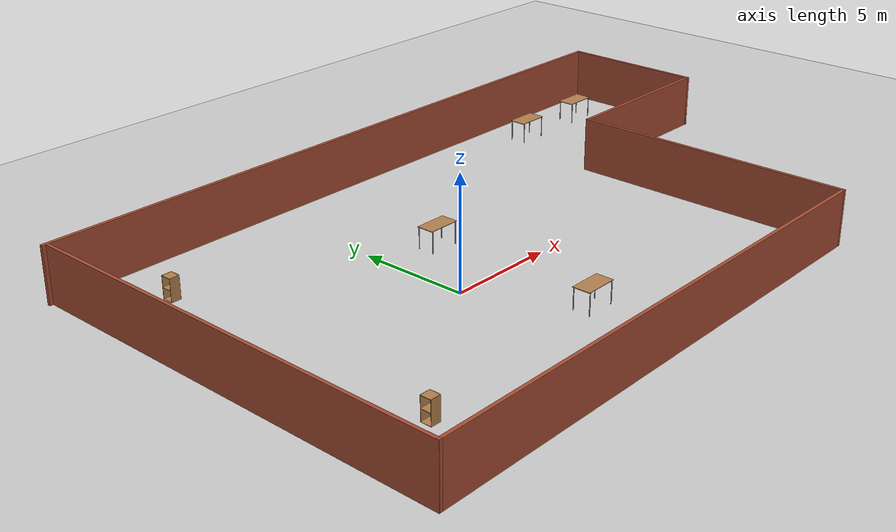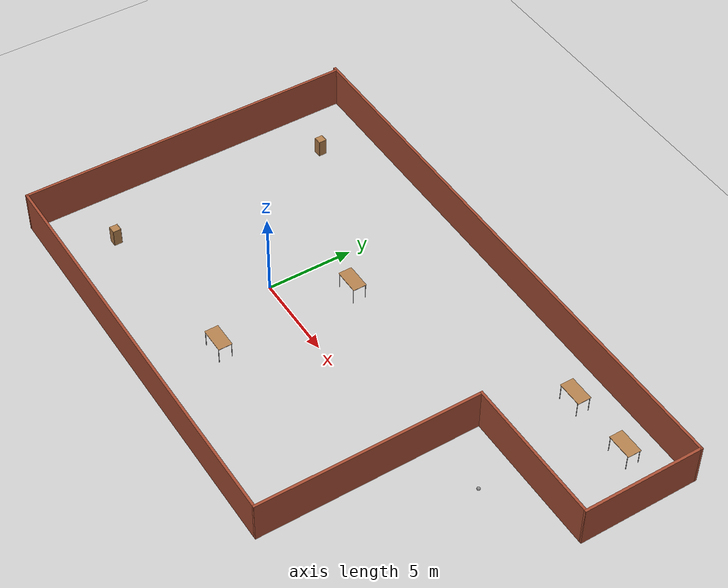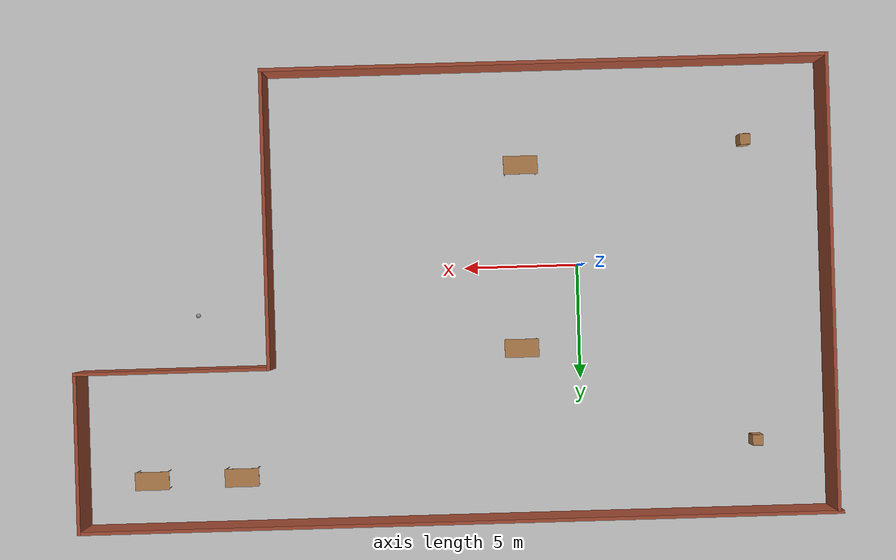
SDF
<sdf version="1.6">
 <world name="default">
  <light name="sun" type="directional">
   <pose>0 0 10 0 -0 0</pose>
   <diffuse>0.8 0.8 0.8 1</diffuse>
   <specular>0.2 0.2 0.2 1</specular>
   <attenuation>
    <range>1000</range>
    <constant>0.9</constant>
    <linear>0.01</linear>
    <quadratic>0.001</quadratic>
   </attenuation>
   <direction>-0.5 0.1 -0.9</direction>
  </light>
  <model name="ground_plane">
   <static>1</static>
   <link name="link">
    <collision name="collision">
     <geometry><plane><normal>0 0 1</normal><size>100 100</size></plane></geometry>
     <surface><friction><ode><mu>100</mu><mu2>50</mu2></ode></friction></surface>
    </collision>
    <visual name="visual">
     <cast_shadows>0</cast_shadows>
     <geometry><plane><normal>0 0 1</normal><size>100 100</size></plane></geometry>
     <material>
      <script><uri>file://media/materials/scripts/gazebo.material</uri><name>Gazebo/Grey</name></script>
     </material>
    </visual>
   </link>
  </model>
  <gravity>0 0 -9.8</gravity>
  <magnetic_field>6e-06 2.3e-05 -4.2e-05</magnetic_field>
  <atmosphere type="adiabatic"/>
  <physics name="default_physics" default="0" type="ode">
   <max_step_size>0.001</max_step_size>
   <real_time_factor>1</real_time_factor>
   <real_time_update_rate>1000</real_time_update_rate>
  </physics>
  <scene><ambient>0.4 0.4 0.4 1</ambient><background>0.7 0.7 0.7 1</background><shadows>1</shadows></scene>
  <spherical_coordinates>
   <surface_model>EARTH_WGS84</surface_model>
   <latitude_deg>0</latitude_deg>
   <longitude_deg>0</longitude_deg>
   <elevation>0</elevation>
   <heading_deg>0</heading_deg>
  </spherical_coordinates>
  <model name="final">
   <pose>5.47784 1.09919 0 0 -0 0</pose>
   <link name="Wall_13">
    <collision name="Wall_13_Collision">
     <geometry><box><size>19.75 0.15 2.5</size></box></geometry>
     <pose>0 0 1.25 0 -0 0</pose>
    </collision>
    <visual name="Wall_13_Visual">
     <pose>0 0 1.25 0 -0 0</pose>
     <geometry><box><size>19.75 0.15 2.5</size></box></geometry>
     <material>
      <script><uri>file://media/materials/scripts/gazebo.material</uri><name>Gazebo/Bricks</name></script>
      <ambient>1 1 1 1</ambient>
     </material>
     <meta><layer>0</layer></meta>
    </visual>
    <pose>-16.275 -0.05 0 0 0 -1.5708</pose>
   </link>
   <link name="Wall_14">
    <collision name="Wall_14_Collision">
     <geometry><box><size>24.5 0.15 2.5</size></box></geometry>
     <pose>0 0 1.25 0 -0 0</pose>
    </collision>
    <visual name="Wall_14_Visual">
     <pose>0 0 1.25 0 -0 0</pose>
     <geometry><box><size>24.5 0.15 2.5</size></box></geometry>
     <material>
      <script><uri>file://media/materials/scripts/gazebo.material</uri><name>Gazebo/Bricks</name></script>
      <ambient>1 1 1 1</ambient>
     </material>
     <meta><layer>0</layer></meta>
    </visual>
    <pose>-4.1 -9.85 0 0 -0 0</pose>
   </link>
   <link name="Wall_15">
    <collision name="Wall_15_Collision">
     <geometry><box><size>13 0.15 2.5</size></box></geometry>
     <pose>0 0 1.25 0 -0 0</pose>
    </collision>
    <visual name="Wall_15_Visual">
     <pose>0 0 1.25 0 -0 0</pose>
     <geometry><box><size>13 0.15 2.5</size></box></geometry>
     <material>
      <script><uri>file://media/materials/scripts/gazebo.material</uri><name>Gazebo/Bricks</name></script>
      <ambient>1 1 1 1</ambient>
     </material>
     <meta><layer>0</layer></meta>
    </visual>
    <pose>8.075 -3.425 0 0 -0 1.5708</pose>
   </link>
   <link name="Wall_16">
    <collision name="Wall_16_Collision">
     <geometry><box><size>8.5 0.15 2.5</size></box></geometry>
     <pose>0 0 1.25 0 -0 0</pose>
    </collision>
    <visual name="Wall_16_Visual">
     <pose>0 0 1.25 0 -0 0</pose>
     <geometry><box><size>8.5 0.15 2.5</size></box></geometry>
     <material>
      <script><uri>file://media/materials/scripts/gazebo.material</uri><name>Gazebo/Bricks</name></script>
      <ambient>1 1 1 1</ambient>
     </material>
     <meta><layer>0</layer></meta>
    </visual>
    <pose>12.25 3 0 0 -0 0</pose>
   </link>
   <link name="Wall_17">
    <collision name="Wall_17_Collision">
     <geometry><box><size>7 0.15 2.5</size></box></geometry>
     <pose>0 0 1.25 0 -0 0</pose>
    </collision>
    <visual name="Wall_17_Visual">
     <pose>0 0 1.25 0 -0 0</pose>
     <geometry><box><size>7 0.15 2.5</size></box></geometry>
     <material>
      <script><uri>file://media/materials/scripts/gazebo.material</uri><name>Gazebo/Bricks</name></script>
      <ambient>1 1 1 1</ambient>
     </material>
     <meta><layer>0</layer></meta>
    </visual>
    <pose>16.425 6.425 0 0 -0 1.5708</pose>
   </link>
   <link name="Wall_18">
    <collision name="Wall_18_Collision">
     <geometry><box><size>33 0.15 2.5</size></box></geometry>
     <pose>0 0 1.25 0 -0 0</pose>
    </collision>
    <visual name="Wall_18_Visual">
     <pose>0 0 1.25 0 -0 0</pose>
     <geometry><box><size>33 0.15 2.5</size></box></geometry>
     <material>
      <script><uri>file://media/materials/scripts/gazebo.material</uri><name>Gazebo/Bricks</name></script>
      <ambient>1 1 1 1</ambient>
     </material>
     <meta><layer>0</layer></meta>
    </visual>
    <pose>0 9.85 0 0 -0 3.14159</pose>
   </link>
   <static>1</static>
  </model>
  <model name="ball">
   <link name="link_0">
    <inertial>
     <mass>1</mass>
     <inertia><ixx>0.1</ixx><ixy>0</ixy><ixz>0</ixz><iyy>0.1</iyy><iyz>0</iyz><izz>0.1</izz></inertia>
    </inertial>
    <visual name="visual">
     <geometry><sphere><radius>0.1</radius></sphere></geometry>
     <material>
      <lighting>1</lighting>
      <script><uri>file://media/materials/scripts/gazebo.material</uri><name>Gazebo/Grey</name></script>
      <shader type="pixel"><normal_map>__default__</normal_map></shader>
      <ambient>1 1 1 1</ambient>
      <diffuse>1 1 1 1</diffuse>
      <specular>1 1 1 1</specular>
      <emissive>1 1 1 1</emissive>
     </material>
    </visual>
    <collision name="collision">
     <geometry><sphere><radius>0.1</radius></sphere></geometry>
     <surface>
      <friction>
       <ode><mu>1</mu><mu2>1</mu2><fdir1>0 0 0</fdir1><slip1>0</slip1><slip2>0</slip2></ode>
       <torsional>
        <coefficient>1</coefficient>
        <patch_radius>0</patch_radius>
        <surface_radius>0</surface_radius>
        <use_patch_radius>1</use_patch_radius>
        <ode><slip>0</slip></ode>
       </torsional>
      </friction>
      <bounce><restitution_coefficient>0</restitution_coefficient><threshold>1e+06</threshold></bounce>
      <contact>
       <collide_without_contact>0</collide_without_contact>
       <collide_without_contact_bitmask>1</collide_without_contact_bitmask>
       <collide_bitmask>1</collide_bitmask>
       <ode>
        <soft_cfm>0</soft_cfm>
        <soft_erp>0.2</soft_erp>
        <kp>1e+13</kp>
        <kd>1</kd>
        <max_vel>0.01</max_vel>
        <min_depth>0</min_depth>
       </ode>
       <bullet>
        <split_impulse>1</split_impulse>
        <split_impulse_penetration_threshold>-0.01</split_impulse_penetration_threshold>
        <soft_cfm>0</soft_cfm>
        <soft_erp>0.2</soft_erp>
        <kp>1e+13</kp>
        <kd>1</kd>
       </bullet>
      </contact>
     </surface>
    </collision>
   </link>
   <static>0</static>
   <pose>16.8393 1.75081 0.1 0 -0 0</pose>
  </model>
  <model name="table">
   <static>1</static>
   <link name="link">
    <collision name="surface">
     <pose>0 0 1 0 -0 0</pose>
     <geometry><box><size>1.5 0.8 0.03</size></box></geometry>
     <surface><friction><ode><mu>0.6</mu><mu2>0.6</mu2></ode></friction></surface>
    </collision>
    <visual name="visual1">
     <pose>0 0 1 0 -0 0</pose>
     <geometry><box><size>1.5 0.8 0.03</size></box></geometry>
     <material>
      <script><uri>file://media/materials/scripts/gazebo.material</uri><name>Gazebo/Wood</name></script>
     </material>
    </visual>
    <collision name="front_left_leg">
     <pose>0.68 0.38 0.5 0 -0 0</pose>
     <geometry><cylinder><radius>0.02</radius><length>1</length></cylinder></geometry>
    </collision>
    <visual name="front_left_leg">
     <pose>0.68 0.38 0.5 0 -0 0</pose>
     <geometry><cylinder><radius>0.02</radius><length>1</length></cylinder></geometry>
     <material>
      <script><uri>file://media/materials/scripts/gazebo.material</uri><name>Gazebo/Grey</name></script>
     </material>
    </visual>
    <collision name="front_right_leg">
     <pose>0.68 -0.38 0.5 0 -0 0</pose>
     <geometry><cylinder><radius>0.02</radius><length>1</length></cylinder></geometry>
    </collision>
    <visual name="front_right_leg">
     <pose>0.68 -0.38 0.5 0 -0 0</pose>
     <geometry><cylinder><radius>0.02</radius><length>1</length></cylinder></geometry>
     <material>
      <script><uri>file://media/materials/scripts/gazebo.material</uri><name>Gazebo/Grey</name></script>
     </material>
    </visual>
    <collision name="back_right_leg">
     <pose>-0.68 -0.38 0.5 0 -0 0</pose>
     <geometry><cylinder><radius>0.02</radius><length>1</length></cylinder></geometry>
    </collision>
    <visual name="back_right_leg">
     <pose>-0.68 -0.38 0.5 0 -0 0</pose>
     <geometry><cylinder><radius>0.02</radius><length>1</length></cylinder></geometry>
     <material>
      <script><uri>file://media/materials/scripts/gazebo.material</uri><name>Gazebo/Grey</name></script>
     </material>
    </visual>
    <collision name="back_left_leg">
     <pose>-0.68 0.38 0.5 0 -0 0</pose>
     <geometry><cylinder><radius>0.02</radius><length>1</length></cylinder></geometry>
    </collision>
    <visual name="back_left_leg">
     <pose>-0.68 0.38 0.5 0 -0 0</pose>
     <geometry><cylinder><radius>0.02</radius><length>1</length></cylinder></geometry>
     <material>
      <script><uri>file://media/materials/scripts/gazebo.material</uri><name>Gazebo/Grey</name></script>
     </material>
    </visual>
   </link>
   <pose>2.59014 3.56761 0 0 -0 0</pose>
  </model>
  <model name="table_0">
   <static>1</static>
   <link name="link">
    <collision name="surface">
     <pose>0 0 1 0 -0 0</pose>
     <geometry><box><size>1.5 0.8 0.03</size></box></geometry>
     <surface><friction><ode><mu>0.6</mu><mu2>0.6</mu2></ode></friction></surface>
    </collision>
    <visual name="visual1">
     <pose>0 0 1 0 -0 0</pose>
     <geometry><box><size>1.5 0.8 0.03</size></box></geometry>
     <material>
      <script><uri>file://media/materials/scripts/gazebo.material</uri><name>Gazebo/Wood</name></script>
     </material>
    </visual>
    <collision name="front_left_leg">
     <pose>0.68 0.38 0.5 0 -0 0</pose>
     <geometry><cylinder><radius>0.02</radius><length>1</length></cylinder></geometry>
    </collision>
    <visual name="front_left_leg">
     <pose>0.68 0.38 0.5 0 -0 0</pose>
     <geometry><cylinder><radius>0.02</radius><length>1</length></cylinder></geometry>
     <material>
      <script><uri>file://media/materials/scripts/gazebo.material</uri><name>Gazebo/Grey</name></script>
     </material>
    </visual>
    <collision name="front_right_leg">
     <pose>0.68 -0.38 0.5 0 -0 0</pose>
     <geometry><cylinder><radius>0.02</radius><length>1</length></cylinder></geometry>
    </collision>
    <visual name="front_right_leg">
     <pose>0.68 -0.38 0.5 0 -0 0</pose>
     <geometry><cylinder><radius>0.02</radius><length>1</length></cylinder></geometry>
     <material>
      <script><uri>file://media/materials/scripts/gazebo.material</uri><name>Gazebo/Grey</name></script>
     </material>
    </visual>
    <collision name="back_right_leg">
     <pose>-0.68 -0.38 0.5 0 -0 0</pose>
     <geometry><cylinder><radius>0.02</radius><length>1</length></cylinder></geometry>
    </collision>
    <visual name="back_right_leg">
     <pose>-0.68 -0.38 0.5 0 -0 0</pose>
     <geometry><cylinder><radius>0.02</radius><length>1</length></cylinder></geometry>
     <material>
      <script><uri>file://media/materials/scripts/gazebo.material</uri><name>Gazebo/Grey</name></script>
     </material>
    </visual>
    <collision name="back_left_leg">
     <pose>-0.68 0.38 0.5 0 -0 0</pose>
     <geometry><cylinder><radius>0.02</radius><length>1</length></cylinder></geometry>
    </collision>
    <visual name="back_left_leg">
     <pose>-0.68 0.38 0.5 0 -0 0</pose>
     <geometry><cylinder><radius>0.02</radius><length>1</length></cylinder></geometry>
     <material>
      <script><uri>file://media/materials/scripts/gazebo.material</uri><name>Gazebo/Grey</name></script>
     </material>
    </visual>
   </link>
   <pose>2.42988 -4.45439 0 0 -0 0</pose>
  </model>
  <model name="table_1">
   <static>1</static>
   <link name="link">
    <collision name="surface">
     <pose>0 0 1 0 -0 0</pose>
     <geometry><box><size>1.5 0.8 0.03</size></box></geometry>
     <surface><friction><ode><mu>0.6</mu><mu2>0.6</mu2></ode></friction></surface>
    </collision>
    <visual name="visual1">
     <pose>0 0 1 0 -0 0</pose>
     <geometry><box><size>1.5 0.8 0.03</size></box></geometry>
     <material>
      <script><uri>file://media/materials/scripts/gazebo.material</uri><name>Gazebo/Wood</name></script>
     </material>
    </visual>
    <collision name="front_left_leg">
     <pose>0.68 0.38 0.5 0 -0 0</pose>
     <geometry><cylinder><radius>0.02</radius><length>1</length></cylinder></geometry>
    </collision>
    <visual name="front_left_leg">
     <pose>0.68 0.38 0.5 0 -0 0</pose>
     <geometry><cylinder><radius>0.02</radius><length>1</length></cylinder></geometry>
     <material>
      <script><uri>file://media/materials/scripts/gazebo.material</uri><name>Gazebo/Grey</name></script>
     </material>
    </visual>
    <collision name="front_right_leg">
     <pose>0.68 -0.38 0.5 0 -0 0</pose>
     <geometry><cylinder><radius>0.02</radius><length>1</length></cylinder></geometry>
    </collision>
    <visual name="front_right_leg">
     <pose>0.68 -0.38 0.5 0 -0 0</pose>
     <geometry><cylinder><radius>0.02</radius><length>1</length></cylinder></geometry>
     <material>
      <script><uri>file://media/materials/scripts/gazebo.material</uri><name>Gazebo/Grey</name></script>
     </material>
    </visual>
    <collision name="back_right_leg">
     <pose>-0.68 -0.38 0.5 0 -0 0</pose>
     <geometry><cylinder><radius>0.02</radius><length>1</length></cylinder></geometry>
    </collision>
    <visual name="back_right_leg">
     <pose>-0.68 -0.38 0.5 0 -0 0</pose>
     <geometry><cylinder><radius>0.02</radius><length>1</length></cylinder></geometry>
     <material>
      <script><uri>file://media/materials/scripts/gazebo.material</uri><name>Gazebo/Grey</name></script>
     </material>
    </visual>
    <collision name="back_left_leg">
     <pose>-0.68 0.38 0.5 0 -0 0</pose>
     <geometry><cylinder><radius>0.02</radius><length>1</length></cylinder></geometry>
    </collision>
    <visual name="back_left_leg">
     <pose>-0.68 0.38 0.5 0 -0 0</pose>
     <geometry><cylinder><radius>0.02</radius><length>1</length></cylinder></geometry>
     <material>
      <script><uri>file://media/materials/scripts/gazebo.material</uri><name>Gazebo/Grey</name></script>
     </material>
    </visual>
   </link>
   <pose>15.0069 8.88104 0 0 -0 0</pose>
  </model>
  <model name="table_2">
   <static>1</static>
   <link name="link">
    <collision name="surface">
     <pose>0 0 1 0 -0 0</pose>
     <geometry><box><size>1.5 0.8 0.03</size></box></geometry>
     <surface><friction><ode><mu>0.6</mu><mu2>0.6</mu2></ode></friction></surface>
    </collision>
    <visual name="visual1">
     <pose>0 0 1 0 -0 0</pose>
     <geometry><box><size>1.5 0.8 0.03</size></box></geometry>
     <material>
      <script><uri>file://media/materials/scripts/gazebo.material</uri><name>Gazebo/Wood</name></script>
     </material>
    </visual>
    <collision name="front_left_leg">
     <pose>0.68 0.38 0.5 0 -0 0</pose>
     <geometry><cylinder><radius>0.02</radius><length>1</length></cylinder></geometry>
    </collision>
    <visual name="front_left_leg">
     <pose>0.68 0.38 0.5 0 -0 0</pose>
     <geometry><cylinder><radius>0.02</radius><length>1</length></cylinder></geometry>
     <material>
      <script><uri>file://media/materials/scripts/gazebo.material</uri><name>Gazebo/Grey</name></script>
     </material>
    </visual>
    <collision name="front_right_leg">
     <pose>0.68 -0.38 0.5 0 -0 0</pose>
     <geometry><cylinder><radius>0.02</radius><length>1</length></cylinder></geometry>
    </collision>
    <visual name="front_right_leg">
     <pose>0.68 -0.38 0.5 0 -0 0</pose>
     <geometry><cylinder><radius>0.02</radius><length>1</length></cylinder></geometry>
     <material>
      <script><uri>file://media/materials/scripts/gazebo.material</uri><name>Gazebo/Grey</name></script>
     </material>
    </visual>
    <collision name="back_right_leg">
     <pose>-0.68 -0.38 0.5 0 -0 0</pose>
     <geometry><cylinder><radius>0.02</radius><length>1</length></cylinder></geometry>
    </collision>
    <visual name="back_right_leg">
     <pose>-0.68 -0.38 0.5 0 -0 0</pose>
     <geometry><cylinder><radius>0.02</radius><length>1</length></cylinder></geometry>
     <material>
      <script><uri>file://media/materials/scripts/gazebo.material</uri><name>Gazebo/Grey</name></script>
     </material>
    </visual>
    <collision name="back_left_leg">
     <pose>-0.68 0.38 0.5 0 -0 0</pose>
     <geometry><cylinder><radius>0.02</radius><length>1</length></cylinder></geometry>
    </collision>
    <visual name="back_left_leg">
     <pose>-0.68 0.38 0.5 0 -0 0</pose>
     <geometry><cylinder><radius>0.02</radius><length>1</length></cylinder></geometry>
     <material>
      <script><uri>file://media/materials/scripts/gazebo.material</uri><name>Gazebo/Grey</name></script>
     </material>
    </visual>
   </link>
   <pose>18.9406 8.91873 0 0 -0 0</pose>
  </model>
  <model name="cabinet">
   <static>1</static>
   <link name="cabinet_bottom_plate">
    <inertial>
     <pose>0 0 -1 0 -0 0</pose>
     <inertia><ixx>2.05</ixx><ixy>0</ixy><ixz>0</ixz><iyy>2.05</iyy><iyz>0</iyz><izz>2.05</izz></inertia>
     <mass>25</mass>
    </inertial>
    <collision name="cabinet_bottom_plate_geom">
     <pose>0 0 0.01 0 -0 0</pose>
     <geometry><box><size>0.45 0.45 0.02</size></box></geometry>
    </collision>
    <visual name="cabinet_bottom_plate_geom_visual">
     <pose>0 0 0.01 0 -0 0</pose>
     <geometry><box><size>0.45 0.45 0.02</size></box></geometry>
     <material>
      <script><uri>file://media/materials/scripts/gazebo.material</uri><name>Gazebo/Wood</name></script>
     </material>
    </visual>
    <collision name="cabinet_bottom_plate_geom_cabinet_back_plate">
     <pose>0.235 0 0.51 0 -0 0</pose>
     <geometry><box><size>0.02 0.45 1.02</size></box></geometry>
    </collision>
    <visual name="cabinet_bottom_plate_geom_cabinet_back_plate_visual">
     <pose>0.235 0 0.51 0 -0 0</pose>
     <geometry><box><size>0.02 0.45 1.02</size></box></geometry>
     <material>
      <script><uri>file://media/materials/scripts/gazebo.material</uri><name>Gazebo/Wood</name></script>
     </material>
    </visual>
    <collision name="cabinet_bottom_plate_geom_cabinet_left_plate">
     <pose>0 0.235 0.51 0 -0 0</pose>
     <geometry><box><size>0.45 0.02 1.02</size></box></geometry>
    </collision>
    <visual name="cabinet_bottom_plate_geom_cabinet_left_plate_visual">
     <pose>0 0.235 0.51 0 -0 0</pose>
     <geometry><box><size>0.45 0.02 1.02</size></box></geometry>
     <material>
      <script><uri>file://media/materials/scripts/gazebo.material</uri><name>Gazebo/Wood</name></script>
     </material>
    </visual>
    <collision name="cabinet_bottom_plate_geom_cabinet_middle_plate">
     <pose>0 0 0.51 0 -0 0</pose>
     <geometry><box><size>0.45 0.45 0.02</size></box></geometry>
    </collision>
    <visual name="cabinet_bottom_plate_geom_cabinet_middle_plate_visual">
     <pose>0 0 0.51 0 -0 0</pose>
     <geometry><box><size>0.45 0.45 0.02</size></box></geometry>
     <material>
      <script><uri>file://media/materials/scripts/gazebo.material</uri><name>Gazebo/Wood</name></script>
     </material>
    </visual>
    <collision name="cabinet_bottom_plate_geom_cabinet_right_plate">
     <pose>0 -0.235 0.51 0 -0 0</pose>
     <geometry><box><size>0.45 0.02 1.02</size></box></geometry>
    </collision>
    <visual name="cabinet_bottom_plate_geom_cabinet_right_plate_visual">
     <pose>0 -0.235 0.51 0 -0 0</pose>
     <geometry><box><size>0.45 0.02 1.02</size></box></geometry>
     <material>
      <script><uri>file://media/materials/scripts/gazebo.material</uri><name>Gazebo/Wood</name></script>
     </material>
    </visual>
    <collision name="cabinet_bottom_plate_geom_cabinet_top_plate">
     <pose>0 0 1.01 0 -0 0</pose>
     <geometry><box><size>0.45 0.45 0.02</size></box></geometry>
    </collision>
    <visual name="cabinet_bottom_plate_geom_cabinet_top_plate_visual">
     <pose>0 0 1.01 0 -0 0</pose>
     <geometry><box><size>0.45 0.45 0.02</size></box></geometry>
     <material>
      <script><uri>file://media/materials/scripts/gazebo.material</uri><name>Gazebo/Wood</name></script>
     </material>
    </visual>
   </link>
   <pose>-7.43877 -5.30587 0 0 -0 0</pose>
  </model>
  <model name="cabinet_0">
   <static>1</static>
   <link name="cabinet_bottom_plate">
    <inertial>
     <pose>0 0 -1 0 -0 0</pose>
     <inertia><ixx>2.05</ixx><ixy>0</ixy><ixz>0</ixz><iyy>2.05</iyy><iyz>0</iyz><izz>2.05</izz></inertia>
     <mass>25</mass>
    </inertial>
    <collision name="cabinet_bottom_plate_geom">
     <pose>0 0 0.01 0 -0 0</pose>
     <geometry><box><size>0.45 0.45 0.02</size></box></geometry>
    </collision>
    <visual name="cabinet_bottom_plate_geom_visual">
     <pose>0 0 0.01 0 -0 0</pose>
     <geometry><box><size>0.45 0.45 0.02</size></box></geometry>
     <material>
      <script><uri>file://media/materials/scripts/gazebo.material</uri><name>Gazebo/Wood</name></script>
     </material>
    </visual>
    <collision name="cabinet_bottom_plate_geom_cabinet_back_plate">
     <pose>0.235 0 0.51 0 -0 0</pose>
     <geometry><box><size>0.02 0.45 1.02</size></box></geometry>
    </collision>
    <visual name="cabinet_bottom_plate_geom_cabinet_back_plate_visual">
     <pose>0.235 0 0.51 0 -0 0</pose>
     <geometry><box><size>0.02 0.45 1.02</size></box></geometry>
     <material>
      <script><uri>file://media/materials/scripts/gazebo.material</uri><name>Gazebo/Wood</name></script>
     </material>
    </visual>
    <collision name="cabinet_bottom_plate_geom_cabinet_left_plate">
     <pose>0 0.235 0.51 0 -0 0</pose>
     <geometry><box><size>0.45 0.02 1.02</size></box></geometry>
    </collision>
    <visual name="cabinet_bottom_plate_geom_cabinet_left_plate_visual">
     <pose>0 0.235 0.51 0 -0 0</pose>
     <geometry><box><size>0.45 0.02 1.02</size></box></geometry>
     <material>
      <script><uri>file://media/materials/scripts/gazebo.material</uri><name>Gazebo/Wood</name></script>
     </material>
    </visual>
    <collision name="cabinet_bottom_plate_geom_cabinet_middle_plate">
     <pose>0 0 0.51 0 -0 0</pose>
     <geometry><box><size>0.45 0.45 0.02</size></box></geometry>
    </collision>
    <visual name="cabinet_bottom_plate_geom_cabinet_middle_plate_visual">
     <pose>0 0 0.51 0 -0 0</pose>
     <geometry><box><size>0.45 0.45 0.02</size></box></geometry>
     <material>
      <script><uri>file://media/materials/scripts/gazebo.material</uri><name>Gazebo/Wood</name></script>
     </material>
    </visual>
    <collision name="cabinet_bottom_plate_geom_cabinet_right_plate">
     <pose>0 -0.235 0.51 0 -0 0</pose>
     <geometry><box><size>0.45 0.02 1.02</size></box></geometry>
    </collision>
    <visual name="cabinet_bottom_plate_geom_cabinet_right_plate_visual">
     <pose>0 -0.235 0.51 0 -0 0</pose>
     <geometry><box><size>0.45 0.02 1.02</size></box></geometry>
     <material>
      <script><uri>file://media/materials/scripts/gazebo.material</uri><name>Gazebo/Wood</name></script>
     </material>
    </visual>
    <collision name="cabinet_bottom_plate_geom_cabinet_top_plate">
     <pose>0 0 1.01 0 -0 0</pose>
     <geometry><box><size>0.45 0.45 0.02</size></box></geometry>
    </collision>
    <visual name="cabinet_bottom_plate_geom_cabinet_top_plate_visual">
     <pose>0 0 1.01 0 -0 0</pose>
     <geometry><box><size>0.45 0.45 0.02</size></box></geometry>
     <material>
      <script><uri>file://media/materials/scripts/gazebo.material</uri><name>Gazebo/Wood</name></script>
     </material>
    </visual>
   </link>
   <pose>-7.62291 7.87964 0 0 -0 0</pose>
  </model>
 </world>
</sdf>
